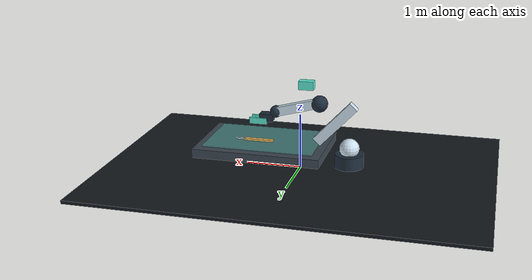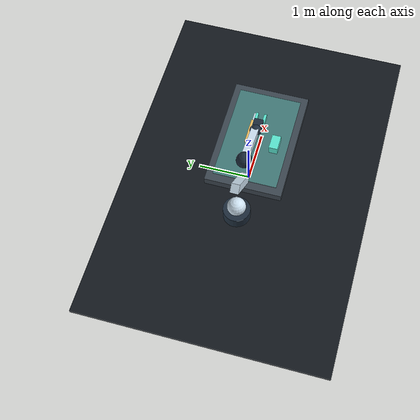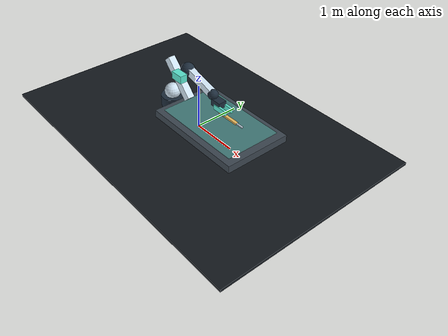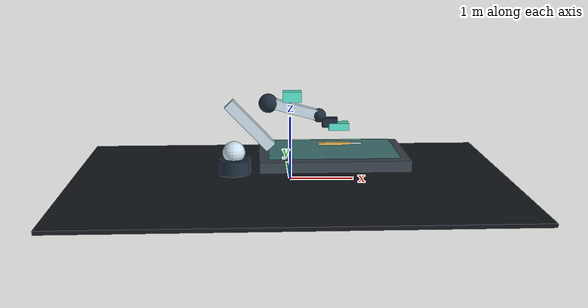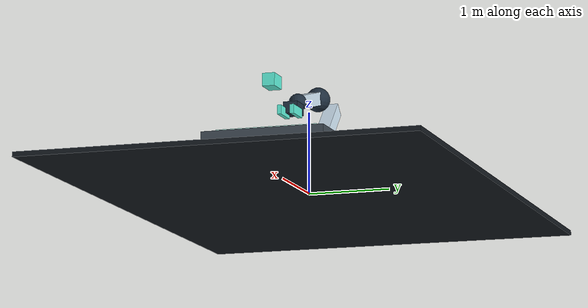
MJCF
<mujoco model="portfolio_xarm_pick_cell">
  <compiler angle="radian" autolimits="true" />
  <option timestep="0.01" gravity="0 0 -9.81" />

  <asset>
    <material name="floor_mat" rgba="0.08 0.1 0.12 1" />
    <material name="table_mat" rgba="0.24 0.28 0.32 1" />
    <material name="arm_light" rgba="0.82 0.9 0.96 1" />
    <material name="arm_joint" rgba="0.12 0.18 0.24 1" />
    <material name="vision_teal" rgba="0.36 0.92 0.83 1" />
    <material name="tool_mat" rgba="0.96 0.76 0.38 1" />
  </asset>

  <worldbody>
    <light name="key" pos="0 -3 5" dir="0.1 0.25 -1" diffuse="0.95 1 1" />
    <camera name="overview" pos="3 -5 3.2" xyaxes="0.86 0.5 0 -0.28 0.48 0.83" />

    <geom name="cell_floor" type="box" pos="0 0 -0.03" size="3.5 2.4 0.03" material="floor_mat" />
    <geom name="work_table" type="box" pos="0.65 0 0.38" size="1.15 0.75 0.08" material="table_mat" />
    <geom name="workspace_boundary" type="box" pos="0.65 0 0.49" size="1.0 0.62 0.012" rgba="0.36 0.92 0.83 0.35" contype="0" conaffinity="0" />

    <body name="xarm_cell" pos="-0.9 0 0.1">
      <geom name="base" type="cylinder" pos="0 0 0.12" size="0.26 0.12" material="arm_joint" density="500" />
      <geom name="shoulder" type="sphere" pos="0 0 0.34" size="0.18" material="arm_light" density="400" />
      <geom name="upper_link" type="box" pos="0.26 0 0.78" size="0.09 0.08 0.48" quat="0.93 0 -0.37 0" material="arm_light" density="260" />
      <geom name="elbow" type="sphere" pos="0.55 0 1.13" size="0.15" material="arm_joint" density="400" />
      <geom name="forearm" type="box" pos="0.95 0 1.04" size="0.42 0.07 0.08" quat="0.99 0 0.13 0" material="arm_light" density="240" />
      <geom name="wrist" type="sphere" pos="1.35 0 0.93" size="0.11" material="arm_joint" density="300" />
      <geom name="gripper_mount" type="box" pos="1.52 0 0.82" size="0.12 0.09 0.07" material="arm_joint" density="180" />
      <geom name="left_finger" type="box" pos="1.66 0.08 0.76" size="0.16 0.025 0.055" material="vision_teal" density="90" />
      <geom name="right_finger" type="box" pos="1.66 -0.08 0.76" size="0.16 0.025 0.055" material="vision_teal" density="90" />
      <geom name="camera" type="box" pos="0.9 -0.48 1.32" size="0.14 0.08 0.08" material="vision_teal" density="90" />
    </body>

    <body name="surgical_tool" pos="0.72 0.18 0.53">
      <freejoint />
      <geom name="handle" type="box" pos="0 0 0" size="0.26 0.035 0.018" material="tool_mat" density="80" />
      <geom name="tip" type="box" pos="0.31 0 0" size="0.12 0.018 0.012" material="arm_light" density="80" />
    </body>
  </worldbody>
</mujoco>
